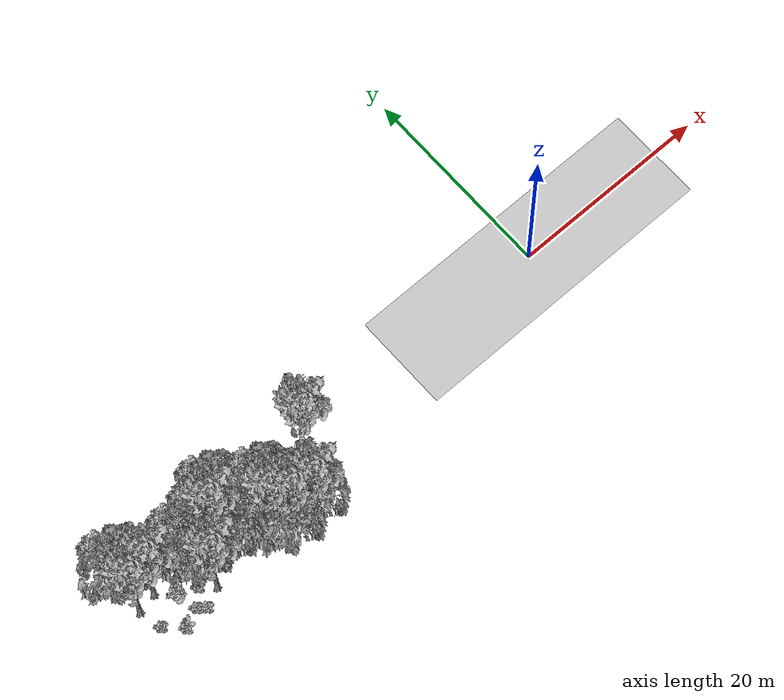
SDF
<sdf version="1.7">
 <world name="default">
  <model name="ground_plane">
   <static>1</static>
   <link name="link">
    <collision name="collision">
     <geometry><plane><normal>0 0 1</normal><size>100 100</size></plane></geometry>
     <surface><contact><ode><min_depth>0.01</min_depth><max_vel>0</max_vel></ode></contact></surface>
    </collision>
    <visual name="grass">
     <cast_shadows>0</cast_shadows>
     <geometry>
      <mesh>
       <scale>0.5814285714285714 0.18142857142857144 0.1</scale>
       <uri>file://grass_plane/meshes/grass_plane.dae</uri>
      </mesh>
     </geometry>
    </visual>
   </link>
  </model>
  <model name="Tree 3">
   <static>1</static>
   <pose>-41.77489237918018 -5.180226990313308 0 1.57079 -0 0</pose>
   <link name="link">
    <collision name="collision">
     <geometry><mesh><scale>3.5 5 3.5</scale><uri>model://tree_9/meshes/tree_9.obj</uri></mesh></geometry>
    </collision>
    <visual name="visual">
     <geometry><mesh><scale>3.5 5 3.5</scale><uri>model://tree_9/meshes/tree_9.obj</uri></mesh></geometry>
    </visual>
   </link>
  </model>
  <model name="Tree 12">
   <static>1</static>
   <pose>-48.348695763967854 -2.4779692079414737 0 1.57079 -0 0</pose>
   <link name="link">
    <collision name="collision">
     <geometry><mesh><scale>3.5 5 3.5</scale><uri>model://tree_9/meshes/tree_9.obj</uri></mesh></geometry>
    </collision>
    <visual name="visual">
     <geometry><mesh><scale>3.5 5 3.5</scale><uri>model://tree_9/meshes/tree_9.obj</uri></mesh></geometry>
    </visual>
   </link>
  </model>
  <model name="Tree 16">
   <static>1</static>
   <pose>-48.28347505902267 0.11804457914672106 0 1.57079 -0 0</pose>
   <link name="link">
    <collision name="collision">
     <geometry><mesh><scale>3.5 5 3.5</scale><uri>model://tree_2/meshes/tree_2.obj</uri></mesh></geometry>
    </collision>
    <visual name="visual">
     <geometry><mesh><scale>3.5 5 3.5</scale><uri>model://tree_2/meshes/tree_2.obj</uri></mesh></geometry>
    </visual>
   </link>
  </model>
  <model name="Tree 39">
   <static>1</static>
   <pose>-42.32961616001169 -1.9559734837157485 0 1.57079 -0 0</pose>
   <link name="link">
    <collision name="collision">
     <geometry><mesh><scale>3.5 5 3.5</scale><uri>model://tree_2/meshes/tree_2.obj</uri></mesh></geometry>
    </collision>
    <visual name="visual">
     <geometry><mesh><scale>3.5 5 3.5</scale><uri>model://tree_2/meshes/tree_2.obj</uri></mesh></geometry>
    </visual>
   </link>
  </model>
  <model name="Tree 104">
   <static>1</static>
   <pose>-39.565508454871484 -3.5359578144767756 0 1.57079 -0 0</pose>
   <link name="link">
    <collision name="collision">
     <geometry><mesh><scale>3.5 5 3.5</scale><uri>model://tree_2/meshes/tree_2.obj</uri></mesh></geometry>
    </collision>
    <visual name="visual">
     <geometry><mesh><scale>3.5 5 3.5</scale><uri>model://tree_2/meshes/tree_2.obj</uri></mesh></geometry>
    </visual>
   </link>
  </model>
  <model name="Tree 140">
   <static>1</static>
   <pose>-34.53419494178578 -4.241238326027503 0 1.57079 -0 0</pose>
   <link name="link">
    <collision name="collision">
     <geometry><mesh><scale>3.5 5 3.5</scale><uri>model://tree_9/meshes/tree_9.obj</uri></mesh></geometry>
    </collision>
    <visual name="visual">
     <geometry><mesh><scale>3.5 5 3.5</scale><uri>model://tree_9/meshes/tree_9.obj</uri></mesh></geometry>
    </visual>
   </link>
  </model>
  <model name="Tree 160">
   <static>1</static>
   <pose>-38.98983184070484 -1.6537251633870156 0 1.57079 -0 0</pose>
   <link name="link">
    <collision name="collision">
     <geometry><mesh><scale>3.5 5 3.5</scale><uri>model://tree_9/meshes/tree_9.obj</uri></mesh></geometry>
    </collision>
    <visual name="visual">
     <geometry><mesh><scale>3.5 5 3.5</scale><uri>model://tree_9/meshes/tree_9.obj</uri></mesh></geometry>
    </visual>
   </link>
  </model>
  <model name="Tree 177">
   <static>1</static>
   <pose>-31.35098951928224 -5.9695693640408205 0 1.57079 -0 0</pose>
   <link name="link">
    <collision name="collision">
     <geometry><mesh><scale>3.5 5 3.5</scale><uri>model://tree_2/meshes/tree_2.obj</uri></mesh></geometry>
    </collision>
    <visual name="visual">
     <geometry><mesh><scale>3.5 5 3.5</scale><uri>model://tree_2/meshes/tree_2.obj</uri></mesh></geometry>
    </visual>
   </link>
  </model>
  <model name="Tree 294">
   <static>1</static>
   <pose>-33.970190442132235 -2.531945103443663 0 1.57079 -0 0</pose>
   <link name="link">
    <collision name="collision">
     <geometry><mesh><scale>3.5 5 3.5</scale><uri>model://tree_2/meshes/tree_2.obj</uri></mesh></geometry>
    </collision>
    <visual name="visual">
     <geometry><mesh><scale>3.5 5 3.5</scale><uri>model://tree_2/meshes/tree_2.obj</uri></mesh></geometry>
    </visual>
   </link>
  </model>
  <model name="Tree 302">
   <static>1</static>
   <pose>-42.12456898017831 -3.245118901056017 0 1.57079 -0 0</pose>
   <link name="link">
    <collision name="collision">
     <geometry><mesh><scale>3.5 5 3.5</scale><uri>model://tree_2/meshes/tree_2.obj</uri></mesh></geometry>
    </collision>
    <visual name="visual">
     <geometry><mesh><scale>3.5 5 3.5</scale><uri>model://tree_2/meshes/tree_2.obj</uri></mesh></geometry>
    </visual>
   </link>
  </model>
  <model name="Tree 327">
   <static>1</static>
   <pose>-38.321756364023805 -3.3453262517040905 0 1.57079 -0 0</pose>
   <link name="link">
    <collision name="collision">
     <geometry><mesh><scale>3.5 5 3.5</scale><uri>model://tree_2/meshes/tree_2.obj</uri></mesh></geometry>
    </collision>
    <visual name="visual">
     <geometry><mesh><scale>3.5 5 3.5</scale><uri>model://tree_2/meshes/tree_2.obj</uri></mesh></geometry>
    </visual>
   </link>
  </model>
  <model name="Tree 375">
   <static>1</static>
   <pose>-33.12098448098813 -5.611489978533175 0 1.57079 -0 0</pose>
   <link name="link">
    <collision name="collision">
     <geometry><mesh><scale>3.5 5 3.5</scale><uri>model://tree_9/meshes/tree_9.obj</uri></mesh></geometry>
    </collision>
    <visual name="visual">
     <geometry><mesh><scale>3.5 5 3.5</scale><uri>model://tree_9/meshes/tree_9.obj</uri></mesh></geometry>
    </visual>
   </link>
  </model>
  <model name="Tree 388">
   <static>1</static>
   <pose>-30.993496270496774 -5.958680980119604 0 1.57079 -0 0</pose>
   <link name="link">
    <collision name="collision">
     <geometry><mesh><scale>3.5 5 3.5</scale><uri>model://tree_9/meshes/tree_9.obj</uri></mesh></geometry>
    </collision>
    <visual name="visual">
     <geometry><mesh><scale>3.5 5 3.5</scale><uri>model://tree_9/meshes/tree_9.obj</uri></mesh></geometry>
    </visual>
   </link>
  </model>
  <model name="Tree 391">
   <static>1</static>
   <pose>-33.19100411432649 -4.05441926762667 0 1.57079 -0 0</pose>
   <link name="link">
    <collision name="collision">
     <geometry><mesh><scale>3.5 5 3.5</scale><uri>model://tree_2/meshes/tree_2.obj</uri></mesh></geometry>
    </collision>
    <visual name="visual">
     <geometry><mesh><scale>3.5 5 3.5</scale><uri>model://tree_2/meshes/tree_2.obj</uri></mesh></geometry>
    </visual>
   </link>
  </model>
  <model name="Tree 394">
   <static>1</static>
   <pose>-34.28934937228063 -6.3271217929102 0 1.57079 -0 0</pose>
   <link name="link">
    <collision name="collision">
     <geometry><mesh><scale>3.5 5 3.5</scale><uri>model://tree_2/meshes/tree_2.obj</uri></mesh></geometry>
    </collision>
    <visual name="visual">
     <geometry><mesh><scale>3.5 5 3.5</scale><uri>model://tree_2/meshes/tree_2.obj</uri></mesh></geometry>
    </visual>
   </link>
  </model>
  <model name="Tree 399">
   <static>1</static>
   <pose>-37.7287897061232 -0.2503590300785632 0 1.57079 -0 0</pose>
   <link name="link">
    <collision name="collision">
     <geometry><mesh><scale>3.5 5 3.5</scale><uri>model://tree_2/meshes/tree_2.obj</uri></mesh></geometry>
    </collision>
    <visual name="visual">
     <geometry><mesh><scale>3.5 5 3.5</scale><uri>model://tree_2/meshes/tree_2.obj</uri></mesh></geometry>
    </visual>
   </link>
  </model>
  <model name="Tree 400">
   <static>1</static>
   <pose>-27.86184102846464 -0.7440292156147663 0 1.57079 -0 0</pose>
   <link name="link">
    <collision name="collision">
     <geometry><mesh><scale>3.5 5 3.5</scale><uri>model://tree_9/meshes/tree_9.obj</uri></mesh></geometry>
    </collision>
    <visual name="visual">
     <geometry><mesh><scale>3.5 5 3.5</scale><uri>model://tree_9/meshes/tree_9.obj</uri></mesh></geometry>
    </visual>
   </link>
  </model>
  <model name="Tree 435">
   <static>1</static>
   <pose>-39.605714342507305 -1.46441938666152 0 1.57079 -0 0</pose>
   <link name="link">
    <collision name="collision">
     <geometry><mesh><scale>3.5 5 3.5</scale><uri>model://tree_2/meshes/tree_2.obj</uri></mesh></geometry>
    </collision>
    <visual name="visual">
     <geometry><mesh><scale>3.5 5 3.5</scale><uri>model://tree_2/meshes/tree_2.obj</uri></mesh></geometry>
    </visual>
   </link>
  </model>
  <model name="Tree 447">
   <static>1</static>
   <pose>-46.36676995689682 -2.017805361137574 0 1.57079 -0 0</pose>
   <link name="link">
    <collision name="collision">
     <geometry><mesh><scale>3.5 5 3.5</scale><uri>model://tree_9/meshes/tree_9.obj</uri></mesh></geometry>
    </collision>
    <visual name="visual">
     <geometry><mesh><scale>3.5 5 3.5</scale><uri>model://tree_9/meshes/tree_9.obj</uri></mesh></geometry>
    </visual>
   </link>
  </model>
  <model name="Bush 5">
   <static>1</static>
   <pose>-29.55367871641472 0.0486039291765028 0 1.57079 -0 0</pose>
   <link name="link">
    <collision name="collision">
     <geometry><mesh><scale>2 2 2</scale><uri>model://bush_2/meshes/bush_2.obj</uri></mesh></geometry>
     <surface><contact><collide_without_contact>false</collide_without_contact></contact></surface>
    </collision>
    <visual name="visual">
     <geometry><mesh><scale>2 2 2</scale><uri>model://bush_2/meshes/bush_2.obj</uri></mesh></geometry>
    </visual>
   </link>
  </model>
  <model name="Bush 6">
   <static>1</static>
   <pose>-46.9577180895417 -0.13461901787218622 0 1.57079 -0 0</pose>
   <link name="link">
    <collision name="collision">
     <geometry><mesh><scale>2 2 2</scale><uri>model://bush_3/meshes/bush_3.obj</uri></mesh></geometry>
     <surface><contact><collide_without_contact>false</collide_without_contact></contact></surface>
    </collision>
    <visual name="visual">
     <geometry><mesh><scale>2 2 2</scale><uri>model://bush_3/meshes/bush_3.obj</uri></mesh></geometry>
    </visual>
   </link>
  </model>
  <model name="Bush 14">
   <static>1</static>
   <pose>-45.883484626864565 -6.078541067976673 0 1.57079 -0 0</pose>
   <link name="link">
    <collision name="collision">
     <geometry><mesh><scale>2 2 2</scale><uri>model://bush_0/meshes/bush_0.obj</uri></mesh></geometry>
     <surface><contact><collide_without_contact>false</collide_without_contact></contact></surface>
    </collision>
    <visual name="visual">
     <geometry><mesh><scale>2 2 2</scale><uri>model://bush_0/meshes/bush_0.obj</uri></mesh></geometry>
    </visual>
   </link>
  </model>
  <model name="Bush 15">
   <static>1</static>
   <pose>-27.05148626162799 -0.49142159478545544 0 1.57079 -0 0</pose>
   <link name="link">
    <collision name="collision">
     <geometry><mesh><scale>2 2 2</scale><uri>model://bush_5/meshes/bush_5.obj</uri></mesh></geometry>
     <surface><contact><collide_without_contact>false</collide_without_contact></contact></surface>
    </collision>
    <visual name="visual">
     <geometry><mesh><scale>2 2 2</scale><uri>model://bush_5/meshes/bush_5.obj</uri></mesh></geometry>
    </visual>
   </link>
  </model>
  <model name="Bush 21">
   <static>1</static>
   <pose>-41.770780302482336 -3.656609586214186 0 1.57079 -0 0</pose>
   <link name="link">
    <collision name="collision">
     <geometry><mesh><scale>2 2 2</scale><uri>model://bush_1/meshes/bush_1.obj</uri></mesh></geometry>
     <surface><contact><collide_without_contact>false</collide_without_contact></contact></surface>
    </collision>
    <visual name="visual">
     <geometry><mesh><scale>2 2 2</scale><uri>model://bush_1/meshes/bush_1.obj</uri></mesh></geometry>
    </visual>
   </link>
  </model>
  <model name="Bush 70">
   <static>1</static>
   <pose>-43.03690734502269 -4.171141527141886 0 1.57079 -0 0</pose>
   <link name="link">
    <collision name="collision">
     <geometry><mesh><scale>2 2 2</scale><uri>model://bush_3/meshes/bush_3.obj</uri></mesh></geometry>
     <surface><contact><collide_without_contact>false</collide_without_contact></contact></surface>
    </collision>
    <visual name="visual">
     <geometry><mesh><scale>2 2 2</scale><uri>model://bush_3/meshes/bush_3.obj</uri></mesh></geometry>
    </visual>
   </link>
  </model>
  <model name="Bush 73">
   <static>1</static>
   <pose>-30.418894470817463 -5.49065917560203 0 1.57079 -0 0</pose>
   <link name="link">
    <collision name="collision">
     <geometry><mesh><scale>2 2 2</scale><uri>model://bush_4/meshes/bush_4.obj</uri></mesh></geometry>
     <surface><contact><collide_without_contact>false</collide_without_contact></contact></surface>
    </collision>
    <visual name="visual">
     <geometry><mesh><scale>2 2 2</scale><uri>model://bush_4/meshes/bush_4.obj</uri></mesh></geometry>
    </visual>
   </link>
  </model>
  <model name="Bush 74">
   <static>1</static>
   <pose>-39.67692643847714 0.4010384843932808 0 1.57079 -0 0</pose>
   <link name="link">
    <collision name="collision">
     <geometry><mesh><scale>2 2 2</scale><uri>model://bush_3/meshes/bush_3.obj</uri></mesh></geometry>
     <surface><contact><collide_without_contact>false</collide_without_contact></contact></surface>
    </collision>
    <visual name="visual">
     <geometry><mesh><scale>2 2 2</scale><uri>model://bush_3/meshes/bush_3.obj</uri></mesh></geometry>
    </visual>
   </link>
  </model>
  <model name="Bush 94">
   <static>1</static>
   <pose>-42.59444276390033 -2.23888311750105 0 1.57079 -0 0</pose>
   <link name="link">
    <collision name="collision">
     <geometry><mesh><scale>2 2 2</scale><uri>model://bush_3/meshes/bush_3.obj</uri></mesh></geometry>
     <surface><contact><collide_without_contact>false</collide_without_contact></contact></surface>
    </collision>
    <visual name="visual">
     <geometry><mesh><scale>2 2 2</scale><uri>model://bush_3/meshes/bush_3.obj</uri></mesh></geometry>
    </visual>
   </link>
  </model>
  <model name="Bush 109">
   <static>1</static>
   <pose>-28.351785569752384 -2.1985739099873776 0 1.57079 -0 0</pose>
   <link name="link">
    <collision name="collision">
     <geometry><mesh><scale>2 2 2</scale><uri>model://bush_3/meshes/bush_3.obj</uri></mesh></geometry>
     <surface><contact><collide_without_contact>false</collide_without_contact></contact></surface>
    </collision>
    <visual name="visual">
     <geometry><mesh><scale>2 2 2</scale><uri>model://bush_3/meshes/bush_3.obj</uri></mesh></geometry>
    </visual>
   </link>
  </model>
  <model name="Bush 120">
   <static>1</static>
   <pose>-28.155228621122436 -1.7508176905193658 0 1.57079 -0 0</pose>
   <link name="link">
    <collision name="collision">
     <geometry><mesh><scale>2 2 2</scale><uri>model://bush_1/meshes/bush_1.obj</uri></mesh></geometry>
     <surface><contact><collide_without_contact>false</collide_without_contact></contact></surface>
    </collision>
    <visual name="visual">
     <geometry><mesh><scale>2 2 2</scale><uri>model://bush_1/meshes/bush_1.obj</uri></mesh></geometry>
    </visual>
   </link>
  </model>
  <model name="Bush 129">
   <static>1</static>
   <pose>-44.36075099131714 -5.514380102373085 0 1.57079 -0 0</pose>
   <link name="link">
    <collision name="collision">
     <geometry><mesh><scale>2 2 2</scale><uri>model://bush_3/meshes/bush_3.obj</uri></mesh></geometry>
     <surface><contact><collide_without_contact>false</collide_without_contact></contact></surface>
    </collision>
    <visual name="visual">
     <geometry><mesh><scale>2 2 2</scale><uri>model://bush_3/meshes/bush_3.obj</uri></mesh></geometry>
    </visual>
   </link>
  </model>
  <model name="Bush 167">
   <static>1</static>
   <pose>-46.2021236617294 -6.361199168794538 0 1.57079 -0 0</pose>
   <link name="link">
    <collision name="collision">
     <geometry><mesh><scale>2 2 2</scale><uri>model://bush_3/meshes/bush_3.obj</uri></mesh></geometry>
     <surface><contact><collide_without_contact>false</collide_without_contact></contact></surface>
    </collision>
    <visual name="visual">
     <geometry><mesh><scale>2 2 2</scale><uri>model://bush_3/meshes/bush_3.obj</uri></mesh></geometry>
    </visual>
   </link>
  </model>
  <model name="Bush 176">
   <static>1</static>
   <pose>-32.289951523581124 0.24734426207266225 0 1.57079 -0 0</pose>
   <link name="link">
    <collision name="collision">
     <geometry><mesh><scale>2 2 2</scale><uri>model://bush_2/meshes/bush_2.obj</uri></mesh></geometry>
     <surface><contact><collide_without_contact>false</collide_without_contact></contact></surface>
    </collision>
    <visual name="visual">
     <geometry><mesh><scale>2 2 2</scale><uri>model://bush_2/meshes/bush_2.obj</uri></mesh></geometry>
    </visual>
   </link>
  </model>
  <model name="Bush 228">
   <static>1</static>
   <pose>-47.54373515568344 -0.5408299263374339 0 1.57079 -0 0</pose>
   <link name="link">
    <collision name="collision">
     <geometry><mesh><scale>2 2 2</scale><uri>model://bush_2/meshes/bush_2.obj</uri></mesh></geometry>
     <surface><contact><collide_without_contact>false</collide_without_contact></contact></surface>
    </collision>
    <visual name="visual">
     <geometry><mesh><scale>2 2 2</scale><uri>model://bush_2/meshes/bush_2.obj</uri></mesh></geometry>
    </visual>
   </link>
  </model>
  <model name="Bush 238">
   <static>1</static>
   <pose>-43.7029021675503 -0.8642740802368145 0 1.57079 -0 0</pose>
   <link name="link">
    <collision name="collision">
     <geometry><mesh><scale>2 2 2</scale><uri>model://bush_4/meshes/bush_4.obj</uri></mesh></geometry>
     <surface><contact><collide_without_contact>false</collide_without_contact></contact></surface>
    </collision>
    <visual name="visual">
     <geometry><mesh><scale>2 2 2</scale><uri>model://bush_4/meshes/bush_4.obj</uri></mesh></geometry>
    </visual>
   </link>
  </model>
  <model name="Bush 268">
   <static>1</static>
   <pose>-30.73866279545368 -2.518674078582542 0 1.57079 -0 0</pose>
   <link name="link">
    <collision name="collision">
     <geometry><mesh><scale>2 2 2</scale><uri>model://bush_4/meshes/bush_4.obj</uri></mesh></geometry>
     <surface><contact><collide_without_contact>false</collide_without_contact></contact></surface>
    </collision>
    <visual name="visual">
     <geometry><mesh><scale>2 2 2</scale><uri>model://bush_4/meshes/bush_4.obj</uri></mesh></geometry>
    </visual>
   </link>
  </model>
  <model name="Bush 275">
   <static>1</static>
   <pose>-44.99265335544282 -3.699659262569961 0 1.57079 -0 0</pose>
   <link name="link">
    <collision name="collision">
     <geometry><mesh><scale>2 2 2</scale><uri>model://bush_1/meshes/bush_1.obj</uri></mesh></geometry>
     <surface><contact><collide_without_contact>false</collide_without_contact></contact></surface>
    </collision>
    <visual name="visual">
     <geometry><mesh><scale>2 2 2</scale><uri>model://bush_1/meshes/bush_1.obj</uri></mesh></geometry>
    </visual>
   </link>
  </model>
  <model name="Bush 276">
   <static>1</static>
   <pose>-37.474138505313874 -0.4838503657619935 0 1.57079 -0 0</pose>
   <link name="link">
    <collision name="collision">
     <geometry><mesh><scale>2 2 2</scale><uri>model://bush_2/meshes/bush_2.obj</uri></mesh></geometry>
     <surface><contact><collide_without_contact>false</collide_without_contact></contact></surface>
    </collision>
    <visual name="visual">
     <geometry><mesh><scale>2 2 2</scale><uri>model://bush_2/meshes/bush_2.obj</uri></mesh></geometry>
    </visual>
   </link>
  </model>
  <model name="Bush 285">
   <static>1</static>
   <pose>-43.62709638118788 -6.093883232484565 0 1.57079 -0 0</pose>
   <link name="link">
    <collision name="collision">
     <geometry><mesh><scale>2 2 2</scale><uri>model://bush_3/meshes/bush_3.obj</uri></mesh></geometry>
     <surface><contact><collide_without_contact>false</collide_without_contact></contact></surface>
    </collision>
    <visual name="visual">
     <geometry><mesh><scale>2 2 2</scale><uri>model://bush_3/meshes/bush_3.obj</uri></mesh></geometry>
    </visual>
   </link>
  </model>
  <model name="Bush 298">
   <static>1</static>
   <pose>-47.78938763159544 -4.783419682346448 0 1.57079 -0 0</pose>
   <link name="link">
    <collision name="collision">
     <geometry><mesh><scale>2 2 2</scale><uri>model://bush_3/meshes/bush_3.obj</uri></mesh></geometry>
     <surface><contact><collide_without_contact>false</collide_without_contact></contact></surface>
    </collision>
    <visual name="visual">
     <geometry><mesh><scale>2 2 2</scale><uri>model://bush_3/meshes/bush_3.obj</uri></mesh></geometry>
    </visual>
   </link>
  </model>
  <model name="Bush 303">
   <static>1</static>
   <pose>-46.965160993200975 -0.3416287224182941 0 1.57079 -0 0</pose>
   <link name="link">
    <collision name="collision">
     <geometry><mesh><scale>2 2 2</scale><uri>model://bush_1/meshes/bush_1.obj</uri></mesh></geometry>
     <surface><contact><collide_without_contact>false</collide_without_contact></contact></surface>
    </collision>
    <visual name="visual">
     <geometry><mesh><scale>2 2 2</scale><uri>model://bush_1/meshes/bush_1.obj</uri></mesh></geometry>
    </visual>
   </link>
  </model>
  <model name="Bush 310">
   <static>1</static>
   <pose>-33.98074315822494 -3.8025596865751368 0 1.57079 -0 0</pose>
   <link name="link">
    <collision name="collision">
     <geometry><mesh><scale>2 2 2</scale><uri>model://bush_2/meshes/bush_2.obj</uri></mesh></geometry>
     <surface><contact><collide_without_contact>false</collide_without_contact></contact></surface>
    </collision>
    <visual name="visual">
     <geometry><mesh><scale>2 2 2</scale><uri>model://bush_2/meshes/bush_2.obj</uri></mesh></geometry>
    </visual>
   </link>
  </model>
  <model name="Bush 313">
   <static>1</static>
   <pose>-27.732277637143877 -2.3747657415687016 0 1.57079 -0 0</pose>
   <link name="link">
    <collision name="collision">
     <geometry><mesh><scale>2 2 2</scale><uri>model://bush_1/meshes/bush_1.obj</uri></mesh></geometry>
     <surface><contact><collide_without_contact>false</collide_without_contact></contact></surface>
    </collision>
    <visual name="visual">
     <geometry><mesh><scale>2 2 2</scale><uri>model://bush_1/meshes/bush_1.obj</uri></mesh></geometry>
    </visual>
   </link>
  </model>
 </world>
</sdf>
